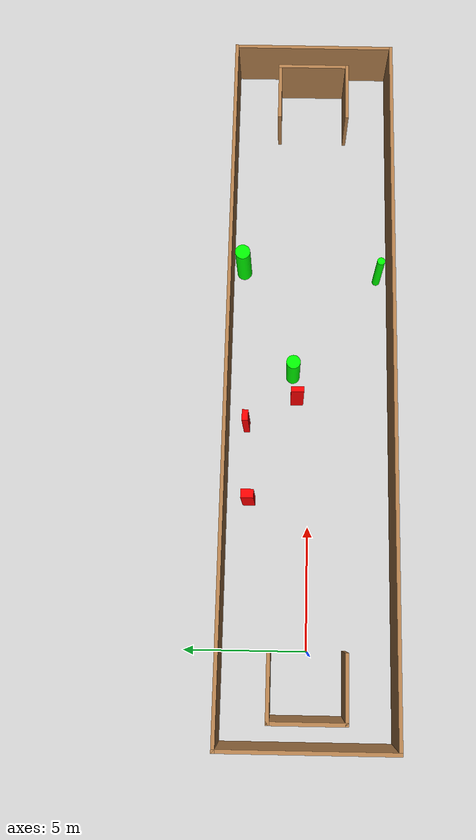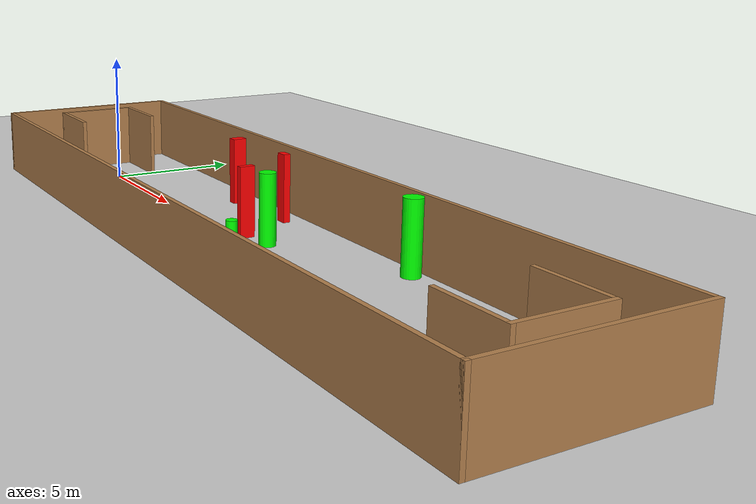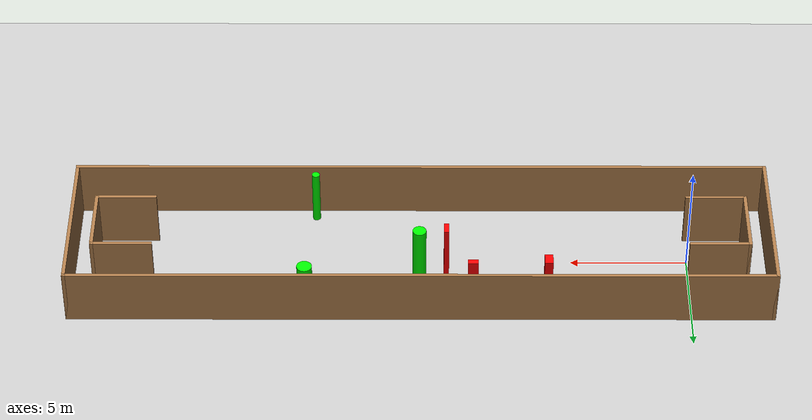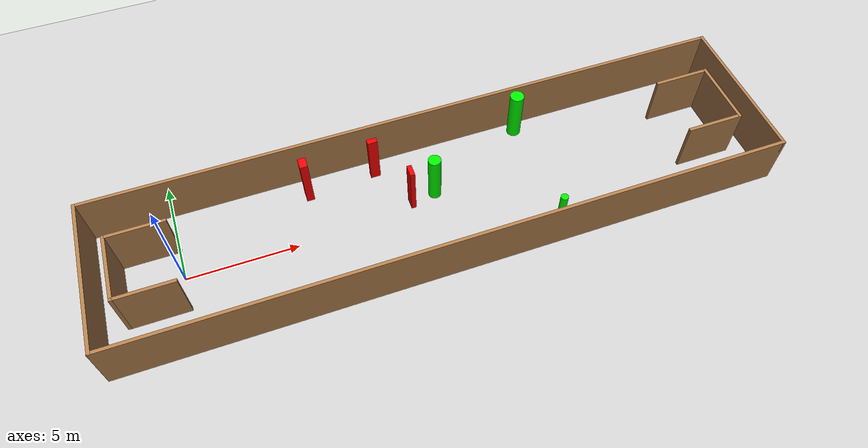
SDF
<sdf version="1.7">
 <world name="default">
  <light name="sun" type="directional">
   <pose>0 0 10 0 -0 0</pose>
   <diffuse>0.8 0.8 0.8 1</diffuse>
   <specular>0.2 0.2 0.2 1</specular>
   <attenuation>
    <range>1000</range>
    <constant>0.9</constant>
    <linear>0.01</linear>
    <quadratic>0.001</quadratic>
   </attenuation>
   <direction>-0.5 0.1 -0.9</direction>
   <spot><inner_angle>0</inner_angle><outer_angle>0</outer_angle><falloff>0</falloff></spot>
  </light>
  <model name="ground_plane">
   <static>1</static>
   <link name="link">
    <collision name="collision">
     <geometry><plane><normal>0 0 1</normal><size>100 100</size></plane></geometry>
     <surface>
      <contact><collide_bitmask>65535</collide_bitmask></contact>
      <friction><ode><mu>100</mu><mu2>50</mu2></ode></friction>
     </surface>
    </collision>
    <visual name="visual">
     <cast_shadows>0</cast_shadows>
     <geometry><plane><normal>0 0 1</normal><size>100 100</size></plane></geometry>
     <material>
      <script><uri>file://media/materials/scripts/gazebo.material</uri><name>Gazebo/Grey</name></script>
     </material>
    </visual>
   </link>
  </model>
  <gravity>0 0 -9.8</gravity>
  <magnetic_field>6e-06 2.3e-05 -4.2e-05</magnetic_field>
  <atmosphere type="adiabatic"/>
  <physics type="ode">
   <max_step_size>0.001</max_step_size>
   <real_time_factor>1</real_time_factor>
   <real_time_update_rate>1000</real_time_update_rate>
  </physics>
  <scene><ambient>0.4 0.4 0.4 1</ambient><background>0.7 0.7 0.7 1</background><shadows>1</shadows></scene>
  <spherical_coordinates>
   <surface_model>EARTH_WGS84</surface_model>
   <latitude_deg>0</latitude_deg>
   <longitude_deg>0</longitude_deg>
   <elevation>0</elevation>
   <heading_deg>0</heading_deg>
  </spherical_coordinates>
  <model name="my_base_walls">
   <link name="Wall_0">
    <collision name="Wall_0_Collision">
     <geometry><box><size>7.15 0.15 2.5</size></box></geometry>
     <pose>0 0 1.25 0 -0 0</pose>
    </collision>
    <visual name="Wall_0_Visual">
     <pose>0 0 1.25 0 -0 0</pose>
     <geometry><box><size>7.15 0.15 2.5</size></box></geometry>
     <material>
      <script><uri>file://media/materials/scripts/gazebo.material</uri><name>Gazebo/Wood</name></script>
      <ambient>1 1 1 1</ambient>
     </material>
     <meta><layer>0</layer></meta>
    </visual>
    <pose>-15 0 0 0 -0 1.5708</pose>
   </link>
   <link name="Wall_10">
    <collision name="Wall_10_Collision">
     <geometry><box><size>2.65 0.15 2.5</size></box></geometry>
     <pose>0 0 1.25 0 -0 0</pose>
    </collision>
    <visual name="Wall_10_Visual">
     <pose>0 0 1.25 0 -0 0</pose>
     <geometry><box><size>2.65 0.15 2.5</size></box></geometry>
     <material>
      <script><uri>file://media/materials/scripts/gazebo.material</uri><name>Gazebo/Wood</name></script>
      <ambient>1 1 1 1</ambient>
     </material>
     <meta><layer>0</layer></meta>
    </visual>
    <pose>-12.75 -1.5 0 0 -0 0</pose>
   </link>
   <link name="Wall_12">
    <collision name="Wall_12_Collision">
     <geometry><box><size>2.65 0.15 2.5</size></box></geometry>
     <pose>0 0 1.25 0 -0 0</pose>
    </collision>
    <visual name="Wall_12_Visual">
     <pose>0 0 1.25 0 -0 0</pose>
     <geometry><box><size>2.65 0.15 2.5</size></box></geometry>
     <material>
      <script><uri>file://media/materials/scripts/gazebo.material</uri><name>Gazebo/Wood</name></script>
      <ambient>1 1 1 1</ambient>
     </material>
     <meta><layer>0</layer></meta>
    </visual>
    <pose>-12.75 1.5 0 0 -0 0</pose>
   </link>
   <link name="Wall_14">
    <collision name="Wall_14_Collision">
     <geometry><box><size>3.15 0.15 2.5</size></box></geometry>
     <pose>0 0 1.25 0 -0 0</pose>
    </collision>
    <visual name="Wall_14_Visual">
     <pose>0 0 1.25 0 -0 0</pose>
     <geometry><box><size>3.15 0.15 2.5</size></box></geometry>
     <material>
      <script><uri>file://media/materials/scripts/gazebo.material</uri><name>Gazebo/Wood</name></script>
      <ambient>1 1 1 1</ambient>
     </material>
     <meta><layer>0</layer></meta>
    </visual>
    <pose>14 0 0 0 -0 -1.5708</pose>
   </link>
   <link name="Wall_15">
    <collision name="Wall_15_Collision">
     <geometry><box><size>2.65 0.15 2.5</size></box></geometry>
     <pose>0 0 1.25 0 -0 0</pose>
    </collision>
    <visual name="Wall_15_Visual">
     <pose>0 0 1.25 0 -0 0</pose>
     <geometry><box><size>2.65 0.15 2.5</size></box></geometry>
     <material>
      <script><uri>file://media/materials/scripts/gazebo.material</uri><name>Gazebo/Wood</name></script>
      <ambient>1 1 1 1</ambient>
     </material>
     <meta><layer>0</layer></meta>
    </visual>
    <pose>12.75 -1.5 0 0 -0 3.14159</pose>
   </link>
   <link name="Wall_17">
    <collision name="Wall_17_Collision">
     <geometry><box><size>2.65 0.15 2.5</size></box></geometry>
     <pose>0 0 1.25 0 -0 0</pose>
    </collision>
    <visual name="Wall_17_Visual">
     <pose>0 0 1.25 0 -0 0</pose>
     <geometry><box><size>2.65 0.15 2.5</size></box></geometry>
     <material>
      <script><uri>file://media/materials/scripts/gazebo.material</uri><name>Gazebo/Wood</name></script>
      <ambient>1 1 1 1</ambient>
     </material>
     <meta><layer>0</layer></meta>
    </visual>
    <pose>12.75 1.5 0 0 -0 3.14159</pose>
   </link>
   <link name="Wall_2">
    <collision name="Wall_2_Collision">
     <geometry><box><size>30.15 0.15 2.5</size></box></geometry>
     <pose>0 0 1.25 0 -0 0</pose>
    </collision>
    <visual name="Wall_2_Visual">
     <pose>0 0 1.25 0 -0 0</pose>
     <geometry><box><size>30.15 0.15 2.5</size></box></geometry>
     <material>
      <script><uri>file://media/materials/scripts/gazebo.material</uri><name>Gazebo/Wood</name></script>
      <ambient>1 1 1 1</ambient>
     </material>
     <meta><layer>0</layer></meta>
    </visual>
    <pose>-0 -3.5 0 0 -0 0</pose>
   </link>
   <link name="Wall_4">
    <collision name="Wall_4_Collision">
     <geometry><box><size>30.15 0.15 2.5</size></box></geometry>
     <pose>0 0 1.25 0 -0 0</pose>
    </collision>
    <visual name="Wall_4_Visual">
     <pose>0 0 1.25 0 -0 0</pose>
     <geometry><box><size>30.15 0.15 2.5</size></box></geometry>
     <material>
      <script><uri>file://media/materials/scripts/gazebo.material</uri><name>Gazebo/Wood</name></script>
      <ambient>1 1 1 1</ambient>
     </material>
     <meta><layer>0</layer></meta>
    </visual>
    <pose>-0 3.5 0 0 -0 0</pose>
   </link>
   <link name="Wall_6">
    <collision name="Wall_6_Collision">
     <geometry><box><size>7.15 0.15 2.5</size></box></geometry>
     <pose>0 0 1.25 0 -0 0</pose>
    </collision>
    <visual name="Wall_6_Visual">
     <pose>0 0 1.25 0 -0 0</pose>
     <geometry><box><size>7.15 0.15 2.5</size></box></geometry>
     <material>
      <script><uri>file://media/materials/scripts/gazebo.material</uri><name>Gazebo/Wood</name></script>
      <ambient>1 1 1 1</ambient>
     </material>
     <meta><layer>0</layer></meta>
    </visual>
    <pose>15 0 0 0 -0 -1.5708</pose>
   </link>
   <link name="Wall_9">
    <collision name="Wall_9_Collision">
     <geometry><box><size>3.15 0.15 2.5</size></box></geometry>
     <pose>0 0 1.25 0 -0 0</pose>
    </collision>
    <visual name="Wall_9_Visual">
     <pose>0 0 1.25 0 -0 0</pose>
     <geometry><box><size>3.15 0.15 2.5</size></box></geometry>
     <material>
      <script><uri>file://media/materials/scripts/gazebo.material</uri><name>Gazebo/Wood</name></script>
      <ambient>1 1 1 1</ambient>
     </material>
     <meta><layer>0</layer></meta>
    </visual>
    <pose>-14 0 0 0 -0 -1.5708</pose>
   </link>
   <static>1</static>
   <pose>11.5 0 0 0 -0 0</pose>
  </model>
  <model name="cylinder1">
   <static>1</static>
   <link name="link">
    <inertial>
     <mass>1</mass>
     <inertia><ixx>0.5</ixx><ixy>0</ixy><ixz>0</ixz><iyy>0.5</iyy><iyz>0</iyz><izz>1</izz></inertia>
    </inertial>
    <collision name="collision">
     <geometry><cylinder><radius>0.2920532836126055</radius><length>2.5</length></cylinder></geometry>
    </collision>
    <visual name="visual">
     <geometry><cylinder><radius>0.2920532836126055</radius><length>2.5</length></cylinder></geometry>
     <material>
      <ambient>0 1 0 1</ambient>
      <diffuse>0 1 0 1</diffuse>
      <specular>0.1 0.1 0.1 1</specular>
      <emissive>0 0 0 0</emissive>
     </material>
    </visual>
   </link>
   <pose>11.553887842229924 0.7119733403303155 1.25 0 0 0</pose>
  </model>
  <model name="cylinder2">
   <static>1</static>
   <link name="link">
    <inertial>
     <mass>1</mass>
     <inertia><ixx>0.5</ixx><ixy>0</ixy><ixz>0</ixz><iyy>0.5</iyy><iyz>0</iyz><izz>1</izz></inertia>
    </inertial>
    <collision name="collision">
     <geometry><cylinder><radius>0.324810736817816</radius><length>2.5</length></cylinder></geometry>
    </collision>
    <visual name="visual">
     <geometry><cylinder><radius>0.324810736817816</radius><length>2.5</length></cylinder></geometry>
     <material>
      <ambient>0 1 0 1</ambient>
      <diffuse>0 1 0 1</diffuse>
      <specular>0.1 0.1 0.1 1</specular>
      <emissive>0 0 0 0</emissive>
     </material>
    </visual>
   </link>
   <pose>16.407510513369566 2.9599439525040534 1.25 0 0 0</pose>
  </model>
  <model name="cylinder3">
   <static>1</static>
   <link name="link">
    <inertial>
     <mass>1</mass>
     <inertia><ixx>0.5</ixx><ixy>0</ixy><ixz>0</ixz><iyy>0.5</iyy><iyz>0</iyz><izz>1</izz></inertia>
    </inertial>
    <collision name="collision">
     <geometry><cylinder><radius>0.16859969285696697</radius><length>2.5</length></cylinder></geometry>
    </collision>
    <visual name="visual">
     <geometry><cylinder><radius>0.16859969285696697</radius><length>2.5</length></cylinder></geometry>
     <material>
      <ambient>0 1 0 1</ambient>
      <diffuse>0 1 0 1</diffuse>
      <specular>0.1 0.1 0.1 1</specular>
      <emissive>0 0 0 0</emissive>
     </material>
    </visual>
   </link>
   <pose>16.08295185761726 -2.9653311763845096 1.25 0 0 0</pose>
  </model>
  <model name="box1">
   <static>1</static>
   <link name="link">
    <inertial>
     <mass>1</mass>
     <inertia><ixx>0.083</ixx><ixy>0</ixy><ixz>0</ixz><iyy>0.083</iyy><iyz>0</iyz><izz>0.083</izz></inertia>
    </inertial>
    <collision name="collision">
     <geometry><box><size>0.21678556471707974 0.5408910791871108 2.5</size></box></geometry>
    </collision>
    <visual name="visual">
     <geometry><box><size>0.21678556471707974 0.5408910791871108 2.5</size></box></geometry>
     <material>
      <ambient>1 0 0 1</ambient>
      <diffuse>1 0 0 1</diffuse>
      <specular>0.1 0.1 0.1 1</specular>
      <emissive>0 0 0 0</emissive>
     </material>
    </visual>
    <sensor name="my_contact" type="contact">
     <contact><collision>box_collision</collision><topic>__default_topic__</topic></contact>
    </sensor>
   </link>
   <pose>10.398257874631248 0.5265143390934606 1.25 0 0 0</pose>
  </model>
  <model name="box2">
   <static>1</static>
   <link name="link">
    <inertial>
     <mass>1</mass>
     <inertia><ixx>0.083</ixx><ixy>0</ixy><ixz>0</ixz><iyy>0.083</iyy><iyz>0</iyz><izz>0.083</izz></inertia>
    </inertial>
    <collision name="collision">
     <geometry><box><size>0.45054985987903673 0.2566976787247587 2.5</size></box></geometry>
    </collision>
    <visual name="visual">
     <geometry><box><size>0.45054985987903673 0.2566976787247587 2.5</size></box></geometry>
     <material>
      <ambient>1 0 0 1</ambient>
      <diffuse>1 0 0 1</diffuse>
      <specular>0.1 0.1 0.1 1</specular>
      <emissive>0 0 0 0</emissive>
     </material>
    </visual>
    <sensor name="my_contact" type="contact">
     <contact><collision>box_collision</collision><topic>__default_topic__</topic></contact>
    </sensor>
   </link>
   <pose>9.278144326123439 2.6558046094699197 1.25 0 0 0</pose>
  </model>
  <model name="box3">
   <static>1</static>
   <link name="link">
    <inertial>
     <mass>1</mass>
     <inertia><ixx>0.083</ixx><ixy>0</ixy><ixz>0</ixz><iyy>0.083</iyy><iyz>0</iyz><izz>0.083</izz></inertia>
    </inertial>
    <collision name="collision">
     <geometry><box><size>0.35506038309795285 0.51969416234337 2.5</size></box></geometry>
    </collision>
    <visual name="visual">
     <geometry><box><size>0.35506038309795285 0.51969416234337 2.5</size></box></geometry>
     <material>
      <ambient>1 0 0 1</ambient>
      <diffuse>1 0 0 1</diffuse>
      <specular>0.1 0.1 0.1 1</specular>
      <emissive>0 0 0 0</emissive>
     </material>
    </visual>
    <sensor name="my_contact" type="contact">
     <contact><collision>box_collision</collision><topic>__default_topic__</topic></contact>
    </sensor>
   </link>
   <pose>6.08259353306725 2.4859353665376913 1.25 0 0 0</pose>
  </model>
 </world>
</sdf>
